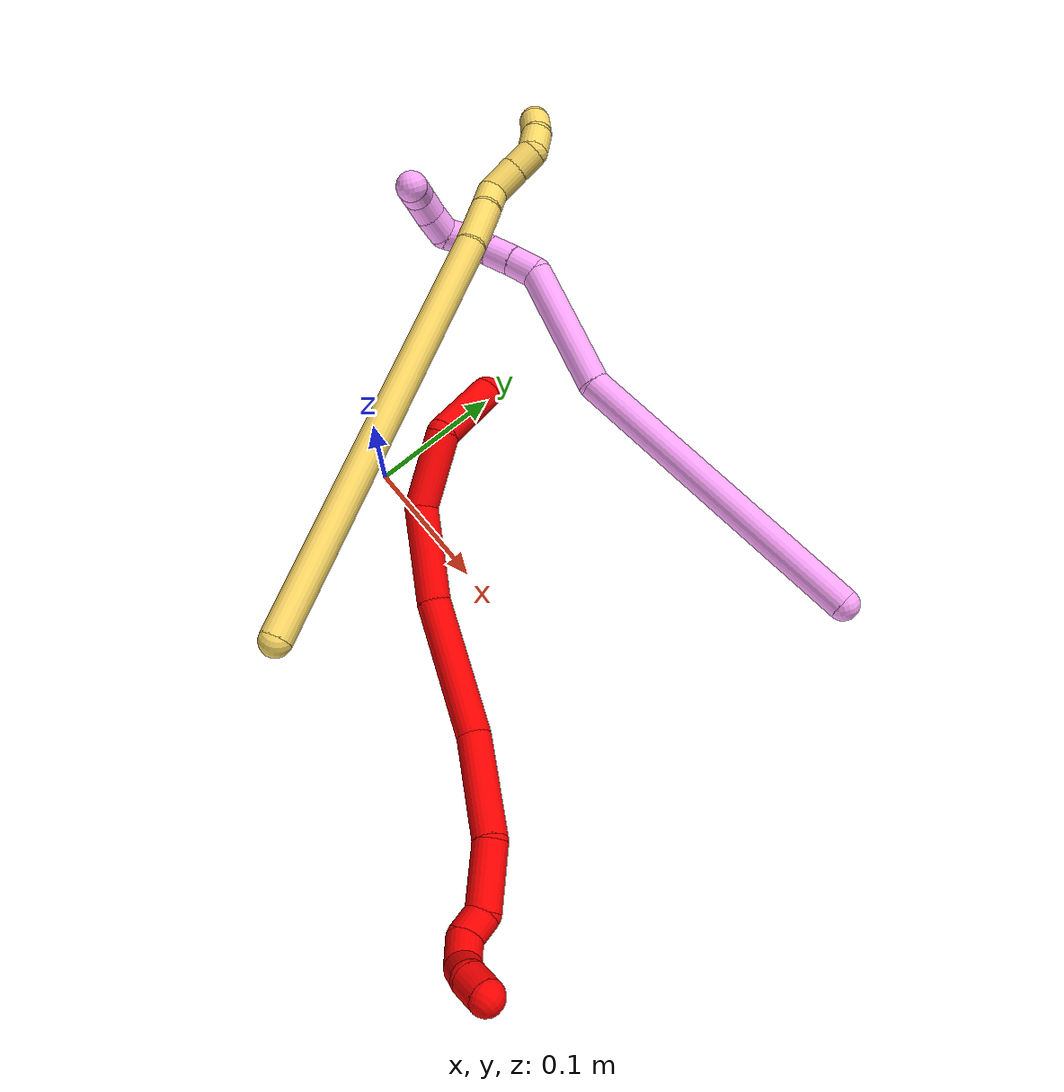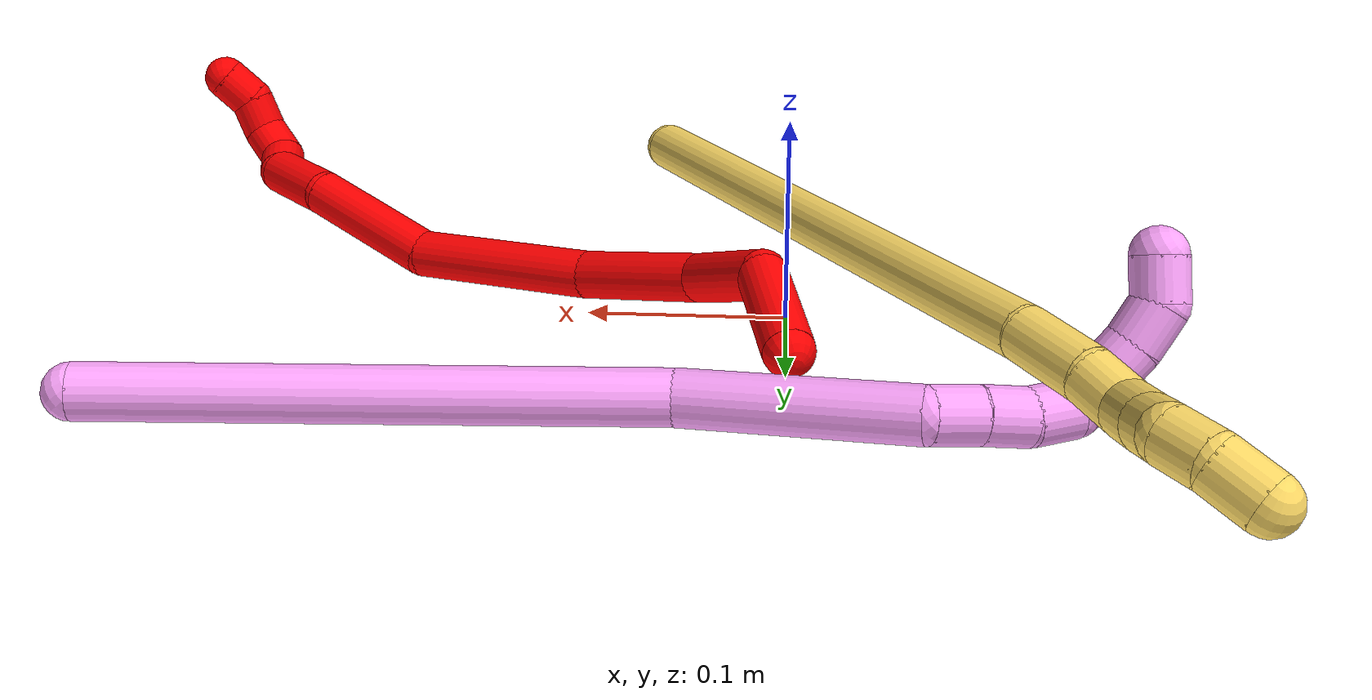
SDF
<sdf version="1.7">
 <world name="default">
  <model name="photoneo_s_sensor">
   <static>1</static>
   <pose>0 0 2 1.57079 1.57079 3.14159</pose>
   <link name="link">
    <inertial><mass>0.1</mass></inertial>
    <sensor name="sensor" type="depth">
     <update_rate>30</update_rate>
     <camera>
      <horizontal_fov>1.22</horizontal_fov>
      <image><width>1920</width><height>1200</height><format>B8G8R8</format></image>
      <clip><near>0.1</near><far>4</far></clip>
      <depth_camera><output>points</output></depth_camera>
     </camera>
     <plugin name="camera_plugin" filename="libgazebo_ros_depth_camera.so">
      <baseline>0.2</baseline>
      <alwaysOn>1</alwaysOn>
      <updateRate>0.0</updateRate>
      <cameraName>camera_ir</cameraName>
      <imageTopicName>/camera/color/image_raw</imageTopicName>
      <cameraInfoTopicName>/camera/color/camera_info</cameraInfoTopicName>
      <depthImageTopicName>/camera/depth/image_raw</depthImageTopicName>
      <depthImageCameraInfoTopicName>/camera/depth/camera_info</depthImageCameraInfoTopicName>
      <pointCloudTopicName>/camera/depth/points</pointCloudTopicName>
      <frameName>fr_optical</frameName>
      <pointCloudCutoff>0.1</pointCloudCutoff>
      <pointCloudCutoffMax>2.0</pointCloudCutoffMax>
      <distortionK1>0</distortionK1>
      <distortionK2>0</distortionK2>
      <distortionK3>0</distortionK3>
      <distortionT1>0</distortionT1>
      <distortionT2>0</distortionT2>
      <CxPrime>0</CxPrime>
      <Cx>0</Cx>
      <Cy>0</Cy>
      <focalLength>0</focalLength>
      <hackBaseline>0</hackBaseline>
     </plugin>
    </sensor>
   </link>
  </model>
  <model name="bin">
   <static>1</static>
   <link name="bottom">
    <collision name="collision-bottom">
     <pose>0 0 -0.01 0 -0 0</pose>
     <geometry><box><size>0.8 0.6 0.02</size></box></geometry>
     <surface>
      <friction><ode><mu>100</mu><mu2>100</mu2></ode></friction>
      <contact><collide_bitmask>65535</collide_bitmask></contact>
     </surface>
    </collision>
   </link>
   <link name="west_wall">
    <collision name="collision-west_wall">
     <pose>-0.41 0 0.1 0 -0 0</pose>
     <geometry><box><size>0.02 0.6 0.2</size></box></geometry>
     <surface>
      <friction><ode><mu>100</mu><mu2>100</mu2></ode></friction>
      <contact><collide_bitmask>65535</collide_bitmask></contact>
     </surface>
    </collision>
   </link>
   <link name="east_wall">
    <collision name="collision-east_wall">
     <pose>0.41 0 0.1 0 -0 0</pose>
     <geometry><box><size>0.02 0.6 0.2</size></box></geometry>
     <surface>
      <friction><ode><mu>100</mu><mu2>100</mu2></ode></friction>
      <contact><collide_bitmask>65535</collide_bitmask></contact>
     </surface>
    </collision>
   </link>
   <link name="south_wall">
    <collision name="collision-south_wall">
     <pose>0 -0.31 0.1 0 -0 0</pose>
     <geometry><box><size>0.8 0.02 0.2</size></box></geometry>
     <surface>
      <friction><ode><mu>100</mu><mu2>100</mu2></ode></friction>
      <contact><collide_bitmask>65535</collide_bitmask></contact>
     </surface>
    </collision>
   </link>
   <link name="north_wall">
    <collision name="collision-north_wall">
     <pose>0 0.31 0.1 0 -0 0</pose>
     <geometry><box><size>0.8 0.02 0.2</size></box></geometry>
     <surface>
      <friction><ode><mu>100</mu><mu2>100</mu2></ode></friction>
      <contact><collide_bitmask>65535</collide_bitmask></contact>
     </surface>
    </collision>
   </link>
  </model>
  <model name="2">
   <static>0</static>
   <link name="2">
    <collision name="collision-cylinder-e_1_1_4">
     <pose>-0.001656 0.001019 0.028916 -0.035209 -0.057168 0.001007</pose>
     <geometry><cylinder><radius>0.0125</radius><length>0.057963</length></cylinder></geometry>
     <surface>
      <friction><ode><mu>1.16</mu><mu2>1.16</mu2><slip1>0</slip1><slip2>0</slip2></ode></friction>
      <contact><ode><kp>1e+06</kp><kd>1</kd><max_vel>0</max_vel><min_depth>0.001</min_depth></ode></contact>
     </surface>
    </collision>
    <visual name="visual-cylinder-e_1_1_4">
     <pose>-0.001656 0.001019 0.028916 -0.035209 -0.057168 0.001007</pose>
     <geometry><cylinder><radius>0.0125</radius><length>0.057963</length></cylinder></geometry>
     <material><ambient>1 0 0 1</ambient></material>
    </visual>
    <collision name="collision-cylinder-e_2_4_5">
     <pose>-0.003326 -0.016285 0.080387 0.682206 -0.000497 -0.000176</pose>
     <geometry><cylinder><radius>0.0125</radius><length>0.058118</length></cylinder></geometry>
     <surface>
      <friction><ode><mu>1.16</mu><mu2>1.16</mu2><slip1>0</slip1><slip2>0</slip2></ode></friction>
      <contact><ode><kp>1e+06</kp><kd>1</kd><max_vel>0</max_vel><min_depth>0.001</min_depth></ode></contact>
     </surface>
    </collision>
    <visual name="visual-cylinder-e_2_4_5">
     <pose>-0.003326 -0.016285 0.080387 0.682206 -0.000497 -0.000176</pose>
     <geometry><cylinder><radius>0.0125</radius><length>0.058118</length></cylinder></geometry>
     <material><ambient>1 0 0 1</ambient></material>
    </visual>
    <collision name="collision-cylinder-e_3_5_6">
     <pose>0.011433 -0.057388 0.126211 0.774822 0.425922 0.17601</pose>
     <geometry><cylinder><radius>0.0125</radius><length>0.071518</length></cylinder></geometry>
     <surface>
      <friction><ode><mu>1.16</mu><mu2>1.16</mu2><slip1>0</slip1><slip2>0</slip2></ode></friction>
      <contact><ode><kp>1e+06</kp><kd>1</kd><max_vel>0</max_vel><min_depth>0.001</min_depth></ode></contact>
     </surface>
    </collision>
    <visual name="visual-cylinder-e_3_5_6">
     <pose>0.011433 -0.057388 0.126211 0.774822 0.425922 0.17601</pose>
     <geometry><cylinder><radius>0.0125</radius><length>0.071518</length></cylinder></geometry>
     <material><ambient>1 0 0 1</ambient></material>
    </visual>
    <collision name="collision-cylinder-e_4_6_7">
     <pose>0.056091 -0.108181 0.180338 0.737078 0.622075 0.24703</pose>
     <geometry><cylinder><radius>0.0125</radius><length>0.102567</length></cylinder></geometry>
     <surface>
      <friction><ode><mu>1.16</mu><mu2>1.16</mu2><slip1>0</slip1><slip2>0</slip2></ode></friction>
      <contact><ode><kp>1e+06</kp><kd>1</kd><max_vel>0</max_vel><min_depth>0.001</min_depth></ode></contact>
     </surface>
    </collision>
    <visual name="visual-cylinder-e_4_6_7">
     <pose>0.056091 -0.108181 0.180338 0.737078 0.622075 0.24703</pose>
     <geometry><cylinder><radius>0.0125</radius><length>0.102567</length></cylinder></geometry>
     <material><ambient>1 0 0 1</ambient></material>
    </visual>
    <collision name="collision-cylinder-e_5_7_8">
     <pose>0.109058 -0.145863 0.241978 0.304396 0.620983 0.098353</pose>
     <geometry><cylinder><radius>0.0125</radius><length>0.079343</length></cylinder></geometry>
     <surface>
      <friction><ode><mu>1.16</mu><mu2>1.16</mu2><slip1>0</slip1><slip2>0</slip2></ode></friction>
      <contact><ode><kp>1e+06</kp><kd>1</kd><max_vel>0</max_vel><min_depth>0.001</min_depth></ode></contact>
     </surface>
    </collision>
    <visual name="visual-cylinder-e_5_7_8">
     <pose>0.109058 -0.145863 0.241978 0.304396 0.620983 0.098353</pose>
     <geometry><cylinder><radius>0.0125</radius><length>0.079343</length></cylinder></geometry>
     <material><ambient>1 0 0 1</ambient></material>
    </visual>
    <collision name="collision-cylinder-e_6_8_9">
     <pose>0.139473 -0.164969 0.293225 0.431981 0.314619 0.069579</pose>
     <geometry><cylinder><radius>0.0125</radius><length>0.047396</length></cylinder></geometry>
     <surface>
      <friction><ode><mu>1.16</mu><mu2>1.16</mu2><slip1>0</slip1><slip2>0</slip2></ode></friction>
      <contact><ode><kp>1e+06</kp><kd>1</kd><max_vel>0</max_vel><min_depth>0.001</min_depth></ode></contact>
     </surface>
    </collision>
    <visual name="visual-cylinder-e_6_8_9">
     <pose>0.139473 -0.164969 0.293225 0.431981 0.314619 0.069579</pose>
     <geometry><cylinder><radius>0.0125</radius><length>0.047396</length></cylinder></geometry>
     <material><ambient>1 0 0 1</ambient></material>
    </visual>
    <collision name="collision-cylinder-e_7_9_10">
     <pose>0.145511 -0.175029 0.323662 0.062618 -0.128995 -0.004046</pose>
     <geometry><cylinder><radius>0.0125</radius><length>0.020151</length></cylinder></geometry>
     <surface>
      <friction><ode><mu>1.16</mu><mu2>1.16</mu2><slip1>0</slip1><slip2>0</slip2></ode></friction>
      <contact><ode><kp>1e+06</kp><kd>1</kd><max_vel>0</max_vel><min_depth>0.001</min_depth></ode></contact>
     </surface>
    </collision>
    <visual name="visual-cylinder-e_7_9_10">
     <pose>0.145511 -0.175029 0.323662 0.062618 -0.128995 -0.004046</pose>
     <geometry><cylinder><radius>0.0125</radius><length>0.020151</length></cylinder></geometry>
     <material><ambient>1 0 0 1</ambient></material>
    </visual>
    <collision name="collision-cylinder-e_8_10_11">
     <pose>0.14977 -0.174624 0.343304 -0.106087 0.518986 -0.028188</pose>
     <geometry><cylinder><radius>0.0125</radius><length>0.0224</length></cylinder></geometry>
     <surface>
      <friction><ode><mu>1.16</mu><mu2>1.16</mu2><slip1>0</slip1><slip2>0</slip2></ode></friction>
      <contact><ode><kp>1e+06</kp><kd>1</kd><max_vel>0</max_vel><min_depth>0.001</min_depth></ode></contact>
     </surface>
    </collision>
    <visual name="visual-cylinder-e_8_10_11">
     <pose>0.14977 -0.174624 0.343304 -0.106087 0.518986 -0.028188</pose>
     <geometry><cylinder><radius>0.0125</radius><length>0.0224</length></cylinder></geometry>
     <material><ambient>1 0 0 1</ambient></material>
    </visual>
    <collision name="collision-cylinder-e_9_11_12">
     <pose>0.162188 -0.167761 0.357911 -0.868477 0.731763 -0.351693</pose>
     <geometry><cylinder><radius>0.0125</radius><length>0.020543</length></cylinder></geometry>
     <surface>
      <friction><ode><mu>1.16</mu><mu2>1.16</mu2><slip1>0</slip1><slip2>0</slip2></ode></friction>
      <contact><ode><kp>1e+06</kp><kd>1</kd><max_vel>0</max_vel><min_depth>0.001</min_depth></ode></contact>
     </surface>
    </collision>
    <visual name="visual-cylinder-e_9_11_12">
     <pose>0.162188 -0.167761 0.357911 -0.868477 0.731763 -0.351693</pose>
     <geometry><cylinder><radius>0.0125</radius><length>0.020543</length></cylinder></geometry>
     <material><ambient>1 0 0 1</ambient></material>
    </visual>
    <collision name="collision-cylinder-e_10_12_2">
     <pose>0.17804 -0.159955 0.366766 -0.466342 1.11681 -0.294585</pose>
     <geometry><cylinder><radius>0.0125</radius><length>0.020003</length></cylinder></geometry>
     <surface>
      <friction><ode><mu>1.16</mu><mu2>1.16</mu2><slip1>0</slip1><slip2>0</slip2></ode></friction>
      <contact><ode><kp>1e+06</kp><kd>1</kd><max_vel>0</max_vel><min_depth>0.001</min_depth></ode></contact>
     </surface>
    </collision>
    <visual name="visual-cylinder-e_10_12_2">
     <pose>0.17804 -0.159955 0.366766 -0.466342 1.11681 -0.294585</pose>
     <geometry><cylinder><radius>0.0125</radius><length>0.020003</length></cylinder></geometry>
     <material><ambient>1 0 0 1</ambient></material>
    </visual>
    <collision name="collision-sphere-2">
     <pose>0.187028 -0.157983 0.370684 0 -0 0</pose>
     <geometry><sphere><radius>0.0125</radius></sphere></geometry>
     <surface>
      <friction><ode><mu>1.16</mu><mu2>1.16</mu2><slip1>0</slip1><slip2>0</slip2></ode></friction>
      <contact><ode><kp>1e+06</kp><kd>1</kd><max_vel>0</max_vel><min_depth>0.001</min_depth></ode></contact>
     </surface>
    </collision>
    <visual name="visual-sphere-2">
     <pose>0.187028 -0.157983 0.370684 0 -0 0</pose>
     <geometry><sphere><radius>0.0125</radius></sphere></geometry>
     <material><ambient>1 0 0 1</ambient></material>
    </visual>
    <collision name="collision-sphere-12">
     <pose>0.169052 -0.161927 0.362848 0 -0 0</pose>
     <geometry><sphere><radius>0.0125</radius></sphere></geometry>
     <surface>
      <friction><ode><mu>1.16</mu><mu2>1.16</mu2><slip1>0</slip1><slip2>0</slip2></ode></friction>
      <contact><ode><kp>1e+06</kp><kd>1</kd><max_vel>0</max_vel><min_depth>0.001</min_depth></ode></contact>
     </surface>
    </collision>
    <visual name="visual-sphere-12">
     <pose>0.169052 -0.161927 0.362848 0 -0 0</pose>
     <geometry><sphere><radius>0.0125</radius></sphere></geometry>
     <material><ambient>1 0 0 1</ambient></material>
    </visual>
    <collision name="collision-sphere-11">
     <pose>0.155325 -0.173594 0.352975 0 -0 0</pose>
     <geometry><sphere><radius>0.0125</radius></sphere></geometry>
     <surface>
      <friction><ode><mu>1.16</mu><mu2>1.16</mu2><slip1>0</slip1><slip2>0</slip2></ode></friction>
      <contact><ode><kp>1e+06</kp><kd>1</kd><max_vel>0</max_vel><min_depth>0.001</min_depth></ode></contact>
     </surface>
    </collision>
    <visual name="visual-sphere-11">
     <pose>0.155325 -0.173594 0.352975 0 -0 0</pose>
     <geometry><sphere><radius>0.0125</radius></sphere></geometry>
     <material><ambient>1 0 0 1</ambient></material>
    </visual>
    <collision name="collision-sphere-10">
     <pose>0.144215 -0.175654 0.333634 0 -0 0</pose>
     <geometry><sphere><radius>0.0125</radius></sphere></geometry>
     <surface>
      <friction><ode><mu>1.16</mu><mu2>1.16</mu2><slip1>0</slip1><slip2>0</slip2></ode></friction>
      <contact><ode><kp>1e+06</kp><kd>1</kd><max_vel>0</max_vel><min_depth>0.001</min_depth></ode></contact>
     </surface>
    </collision>
    <visual name="visual-sphere-10">
     <pose>0.144215 -0.175654 0.333634 0 -0 0</pose>
     <geometry><sphere><radius>0.0125</radius></sphere></geometry>
     <material><ambient>1 0 0 1</ambient></material>
    </visual>
    <collision name="collision-sphere-9">
     <pose>0.146807 -0.174403 0.31369 0 -0 0</pose>
     <geometry><sphere><radius>0.0125</radius></sphere></geometry>
     <surface>
      <friction><ode><mu>1.16</mu><mu2>1.16</mu2><slip1>0</slip1><slip2>0</slip2></ode></friction>
      <contact><ode><kp>1e+06</kp><kd>1</kd><max_vel>0</max_vel><min_depth>0.001</min_depth></ode></contact>
     </surface>
    </collision>
    <visual name="visual-sphere-9">
     <pose>0.146807 -0.174403 0.31369 0 -0 0</pose>
     <geometry><sphere><radius>0.0125</radius></sphere></geometry>
     <material><ambient>1 0 0 1</ambient></material>
    </visual>
    <collision name="collision-sphere-4">
     <pose>-0.003312 0.002037 0.057832 0 -0 0</pose>
     <geometry><sphere><radius>0.0125</radius></sphere></geometry>
     <surface>
      <friction><ode><mu>1.16</mu><mu2>1.16</mu2><slip1>0</slip1><slip2>0</slip2></ode></friction>
      <contact><ode><kp>1e+06</kp><kd>1</kd><max_vel>0</max_vel><min_depth>0.001</min_depth></ode></contact>
     </surface>
    </collision>
    <visual name="visual-sphere-4">
     <pose>-0.003312 0.002037 0.057832 0 -0 0</pose>
     <geometry><sphere><radius>0.0125</radius></sphere></geometry>
     <material><ambient>1 0 0 1</ambient></material>
    </visual>
    <collision name="collision-sphere-1">
     <geometry><sphere><radius>0.0125</radius></sphere></geometry>
     <surface>
      <friction><ode><mu>1.16</mu><mu2>1.16</mu2><slip1>0</slip1><slip2>0</slip2></ode></friction>
      <contact><ode><kp>1e+06</kp><kd>1</kd><max_vel>0</max_vel><min_depth>0.001</min_depth></ode></contact>
     </surface>
    </collision>
    <visual name="visual-sphere-1">
     <geometry><sphere><radius>0.0125</radius></sphere></geometry>
     <material><ambient>1 0 0 1</ambient></material>
    </visual>
    <collision name="collision-sphere-8">
     <pose>0.13214 -0.155534 0.27276 0 -0 0</pose>
     <geometry><sphere><radius>0.0125</radius></sphere></geometry>
     <surface>
      <friction><ode><mu>1.16</mu><mu2>1.16</mu2><slip1>0</slip1><slip2>0</slip2></ode></friction>
      <contact><ode><kp>1e+06</kp><kd>1</kd><max_vel>0</max_vel><min_depth>0.001</min_depth></ode></contact>
     </surface>
    </collision>
    <visual name="visual-sphere-8">
     <pose>0.13214 -0.155534 0.27276 0 -0 0</pose>
     <geometry><sphere><radius>0.0125</radius></sphere></geometry>
     <material><ambient>1 0 0 1</ambient></material>
    </visual>
    <collision name="collision-sphere-5">
     <pose>-0.003341 -0.034606 0.102942 0 -0 0</pose>
     <geometry><sphere><radius>0.0125</radius></sphere></geometry>
     <surface>
      <friction><ode><mu>1.16</mu><mu2>1.16</mu2><slip1>0</slip1><slip2>0</slip2></ode></friction>
      <contact><ode><kp>1e+06</kp><kd>1</kd><max_vel>0</max_vel><min_depth>0.001</min_depth></ode></contact>
     </surface>
    </collision>
    <visual name="visual-sphere-5">
     <pose>-0.003341 -0.034606 0.102942 0 -0 0</pose>
     <geometry><sphere><radius>0.0125</radius></sphere></geometry>
     <material><ambient>1 0 0 1</ambient></material>
    </visual>
    <collision name="collision-sphere-6">
     <pose>0.026208 -0.080169 0.149479 0 -0 0</pose>
     <geometry><sphere><radius>0.0125</radius></sphere></geometry>
     <surface>
      <friction><ode><mu>1.16</mu><mu2>1.16</mu2><slip1>0</slip1><slip2>0</slip2></ode></friction>
      <contact><ode><kp>1e+06</kp><kd>1</kd><max_vel>0</max_vel><min_depth>0.001</min_depth></ode></contact>
     </surface>
    </collision>
    <visual name="visual-sphere-6">
     <pose>0.026208 -0.080169 0.149479 0 -0 0</pose>
     <geometry><sphere><radius>0.0125</radius></sphere></geometry>
     <material><ambient>1 0 0 1</ambient></material>
    </visual>
    <collision name="collision-sphere-7">
     <pose>0.085975 -0.136193 0.211196 0 -0 0</pose>
     <geometry><sphere><radius>0.0125</radius></sphere></geometry>
     <surface>
      <friction><ode><mu>1.16</mu><mu2>1.16</mu2><slip1>0</slip1><slip2>0</slip2></ode></friction>
      <contact><ode><kp>1e+06</kp><kd>1</kd><max_vel>0</max_vel><min_depth>0.001</min_depth></ode></contact>
     </surface>
    </collision>
    <visual name="visual-sphere-7">
     <pose>0.085975 -0.136193 0.211196 0 -0 0</pose>
     <geometry><sphere><radius>0.0125</radius></sphere></geometry>
     <material><ambient>1 0 0 1</ambient></material>
    </visual>
    <inertial>
     <pose>0.06945 -0.099128 0.191738 0 -0 0</pose>
     <mass>0.5</mass>
     <inertia>
      <ixx>0.000234</ixx>
      <ixy>0</ixy>
      <ixz>0</ixz>
      <iyy>0.000209</iyy>
      <iyz>0</iyz>
      <izz>2.7e-05</izz>
     </inertia>
    </inertial>
   </link>
   <pose>-0.001333 0.101241 0.012499 1.15257 -0.412148 0.491102</pose>
  </model>
  <model name="4">
   <static>0</static>
   <link name="4">
    <collision name="collision-cylinder-e_1_1_4">
     <pose>-0.075047 0.05097 0.086446 -0.532748 -0.642109 0.180988</pose>
     <geometry><cylinder><radius>0.0125</radius><length>0.250622</length></cylinder></geometry>
     <surface>
      <friction><ode><mu>1.16</mu><mu2>1.16</mu2><slip1>0</slip1><slip2>0</slip2></ode></friction>
      <contact><ode><kp>1e+06</kp><kd>1</kd><max_vel>0</max_vel><min_depth>0.001</min_depth></ode></contact>
     </surface>
    </collision>
    <visual name="visual-cylinder-e_1_1_4">
     <pose>-0.075047 0.05097 0.086446 -0.532748 -0.642109 0.180988</pose>
     <geometry><cylinder><radius>0.0125</radius><length>0.250622</length></cylinder></geometry>
     <material><ambient>1 0.65098 0.996078 1</ambient></material>
    </visual>
    <collision name="collision-cylinder-e_2_4_5">
     <pose>-0.16509 0.129749 0.214877 -0.585015 -0.289409 0.087712</pose>
     <geometry><cylinder><radius>0.0125</radius><length>0.105091</length></cylinder></geometry>
     <surface>
      <friction><ode><mu>1.16</mu><mu2>1.16</mu2><slip1>0</slip1><slip2>0</slip2></ode></friction>
      <contact><ode><kp>1e+06</kp><kd>1</kd><max_vel>0</max_vel><min_depth>0.001</min_depth></ode></contact>
     </surface>
    </collision>
    <visual name="visual-cylinder-e_2_4_5">
     <pose>-0.16509 0.129749 0.214877 -0.585015 -0.289409 0.087712</pose>
     <geometry><cylinder><radius>0.0125</radius><length>0.105091</length></cylinder></geometry>
     <material><ambient>1 0.65098 0.996078 1</ambient></material>
    </visual>
    <collision name="collision-cylinder-e_3_5_6">
     <pose>-0.188596 0.161143 0.263134 -0.519198 -0.867084 0.244666</pose>
     <geometry><cylinder><radius>0.0125</radius><length>0.022325</length></cylinder></geometry>
     <surface>
      <friction><ode><mu>1.16</mu><mu2>1.16</mu2><slip1>0</slip1><slip2>0</slip2></ode></friction>
      <contact><ode><kp>1e+06</kp><kd>1</kd><max_vel>0</max_vel><min_depth>0.001</min_depth></ode></contact>
     </surface>
    </collision>
    <visual name="visual-cylinder-e_3_5_6">
     <pose>-0.188596 0.161143 0.263134 -0.519198 -0.867084 0.244666</pose>
     <geometry><cylinder><radius>0.0125</radius><length>0.022325</length></cylinder></geometry>
     <material><ambient>1 0.65098 0.996078 1</ambient></material>
    </visual>
    <collision name="collision-cylinder-e_4_6_7">
     <pose>-0.205637 0.168462 0.274929 -0.594568 -0.907187 0.296509</pose>
     <geometry><cylinder><radius>0.0125</radius><length>0.021654</length></cylinder></geometry>
     <surface>
      <friction><ode><mu>1.16</mu><mu2>1.16</mu2><slip1>0</slip1><slip2>0</slip2></ode></friction>
      <contact><ode><kp>1e+06</kp><kd>1</kd><max_vel>0</max_vel><min_depth>0.001</min_depth></ode></contact>
     </surface>
    </collision>
    <visual name="visual-cylinder-e_4_6_7">
     <pose>-0.205637 0.168462 0.274929 -0.594568 -0.907187 0.296509</pose>
     <geometry><cylinder><radius>0.0125</radius><length>0.021654</length></cylinder></geometry>
     <material><ambient>1 0.65098 0.996078 1</ambient></material>
    </visual>
    <collision name="collision-cylinder-e_5_7_8">
     <pose>-0.222115 0.173707 0.286473 -0.245762 -0.908005 0.120394</pose>
     <geometry><cylinder><radius>0.0125</radius><length>0.020169</length></cylinder></geometry>
     <surface>
      <friction><ode><mu>1.16</mu><mu2>1.16</mu2><slip1>0</slip1><slip2>0</slip2></ode></friction>
      <contact><ode><kp>1e+06</kp><kd>1</kd><max_vel>0</max_vel><min_depth>0.001</min_depth></ode></contact>
     </surface>
    </collision>
    <visual name="visual-cylinder-e_5_7_8">
     <pose>-0.222115 0.173707 0.286473 -0.245762 -0.908005 0.120394</pose>
     <geometry><cylinder><radius>0.0125</radius><length>0.020169</length></cylinder></geometry>
     <material><ambient>1 0.65098 0.996078 1</ambient></material>
    </visual>
    <collision name="collision-cylinder-e_6_8_9">
     <pose>-0.237934 0.171852 0.297666 0.576614 -0.905596 -0.286591</pose>
     <geometry><cylinder><radius>0.0125</radius><length>0.020003</length></cylinder></geometry>
     <surface>
      <friction><ode><mu>1.16</mu><mu2>1.16</mu2><slip1>0</slip1><slip2>0</slip2></ode></friction>
      <contact><ode><kp>1e+06</kp><kd>1</kd><max_vel>0</max_vel><min_depth>0.001</min_depth></ode></contact>
     </surface>
    </collision>
    <visual name="visual-cylinder-e_6_8_9">
     <pose>-0.237934 0.171852 0.297666 0.576614 -0.905596 -0.286591</pose>
     <geometry><cylinder><radius>0.0125</radius><length>0.020003</length></cylinder></geometry>
     <material><ambient>1 0.65098 0.996078 1</ambient></material>
    </visual>
    <collision name="collision-cylinder-e_7_9_10">
     <pose>-0.248827 0.165093 0.311803 0.361927 -0.305652 -0.056348</pose>
     <geometry><cylinder><radius>0.0125</radius><length>0.020097</length></cylinder></geometry>
     <surface>
      <friction><ode><mu>1.16</mu><mu2>1.16</mu2><slip1>0</slip1><slip2>0</slip2></ode></friction>
      <contact><ode><kp>1e+06</kp><kd>1</kd><max_vel>0</max_vel><min_depth>0.001</min_depth></ode></contact>
     </surface>
    </collision>
    <visual name="visual-cylinder-e_7_9_10">
     <pose>-0.248827 0.165093 0.311803 0.361927 -0.305652 -0.056348</pose>
     <geometry><cylinder><radius>0.0125</radius><length>0.020097</length></cylinder></geometry>
     <material><ambient>1 0.65098 0.996078 1</ambient></material>
    </visual>
    <collision name="collision-cylinder-e_8_10_11">
     <pose>-0.253694 0.157092 0.329464 0.487161 -0.185143 -0.046135</pose>
     <geometry><cylinder><radius>0.0125</radius><length>0.020029</length></cylinder></geometry>
     <surface>
      <friction><ode><mu>1.16</mu><mu2>1.16</mu2><slip1>0</slip1><slip2>0</slip2></ode></friction>
      <contact><ode><kp>1e+06</kp><kd>1</kd><max_vel>0</max_vel><min_depth>0.001</min_depth></ode></contact>
     </surface>
    </collision>
    <visual name="visual-cylinder-e_8_10_11">
     <pose>-0.253694 0.157092 0.329464 0.487161 -0.185143 -0.046135</pose>
     <geometry><cylinder><radius>0.0125</radius><length>0.020029</length></cylinder></geometry>
     <material><ambient>1 0.65098 0.996078 1</ambient></material>
    </visual>
    <collision name="collision-cylinder-e_9_11_2">
     <pose>-0.255274 0.143848 0.343206 1.04212 0.026365 0.015133</pose>
     <geometry><cylinder><radius>0.0125</radius><length>0.020009</length></cylinder></geometry>
     <surface>
      <friction><ode><mu>1.16</mu><mu2>1.16</mu2><slip1>0</slip1><slip2>0</slip2></ode></friction>
      <contact><ode><kp>1e+06</kp><kd>1</kd><max_vel>0</max_vel><min_depth>0.001</min_depth></ode></contact>
     </surface>
    </collision>
    <visual name="visual-cylinder-e_9_11_2">
     <pose>-0.255274 0.143848 0.343206 1.04212 0.026365 0.015133</pose>
     <geometry><cylinder><radius>0.0125</radius><length>0.020009</length></cylinder></geometry>
     <material><ambient>1 0.65098 0.996078 1</ambient></material>
    </visual>
    <collision name="collision-sphere-2">
     <pose>-0.25501 0.135213 0.348251 0 -0 0</pose>
     <geometry><sphere><radius>0.0125</radius></sphere></geometry>
     <surface>
      <friction><ode><mu>1.16</mu><mu2>1.16</mu2><slip1>0</slip1><slip2>0</slip2></ode></friction>
      <contact><ode><kp>1e+06</kp><kd>1</kd><max_vel>0</max_vel><min_depth>0.001</min_depth></ode></contact>
     </surface>
    </collision>
    <visual name="visual-sphere-2">
     <pose>-0.25501 0.135213 0.348251 0 -0 0</pose>
     <geometry><sphere><radius>0.0125</radius></sphere></geometry>
     <material><ambient>1 0.65098 0.996078 1</ambient></material>
    </visual>
    <collision name="collision-sphere-11">
     <pose>-0.255537 0.152484 0.338162 0 -0 0</pose>
     <geometry><sphere><radius>0.0125</radius></sphere></geometry>
     <surface>
      <friction><ode><mu>1.16</mu><mu2>1.16</mu2><slip1>0</slip1><slip2>0</slip2></ode></friction>
      <contact><ode><kp>1e+06</kp><kd>1</kd><max_vel>0</max_vel><min_depth>0.001</min_depth></ode></contact>
     </surface>
    </collision>
    <visual name="visual-sphere-11">
     <pose>-0.255537 0.152484 0.338162 0 -0 0</pose>
     <geometry><sphere><radius>0.0125</radius></sphere></geometry>
     <material><ambient>1 0.65098 0.996078 1</ambient></material>
    </visual>
    <collision name="collision-sphere-10">
     <pose>-0.25185 0.1617 0.320765 0 -0 0</pose>
     <geometry><sphere><radius>0.0125</radius></sphere></geometry>
     <surface>
      <friction><ode><mu>1.16</mu><mu2>1.16</mu2><slip1>0</slip1><slip2>0</slip2></ode></friction>
      <contact><ode><kp>1e+06</kp><kd>1</kd><max_vel>0</max_vel><min_depth>0.001</min_depth></ode></contact>
     </surface>
    </collision>
    <visual name="visual-sphere-10">
     <pose>-0.25185 0.1617 0.320765 0 -0 0</pose>
     <geometry><sphere><radius>0.0125</radius></sphere></geometry>
     <material><ambient>1 0.65098 0.996078 1</ambient></material>
    </visual>
    <collision name="collision-sphere-9">
     <pose>-0.245803 0.168486 0.302841 0 -0 0</pose>
     <geometry><sphere><radius>0.0125</radius></sphere></geometry>
     <surface>
      <friction><ode><mu>1.16</mu><mu2>1.16</mu2><slip1>0</slip1><slip2>0</slip2></ode></friction>
      <contact><ode><kp>1e+06</kp><kd>1</kd><max_vel>0</max_vel><min_depth>0.001</min_depth></ode></contact>
     </surface>
    </collision>
    <visual name="visual-sphere-9">
     <pose>-0.245803 0.168486 0.302841 0 -0 0</pose>
     <geometry><sphere><radius>0.0125</radius></sphere></geometry>
     <material><ambient>1 0.65098 0.996078 1</ambient></material>
    </visual>
    <collision name="collision-sphere-4">
     <pose>-0.150094 0.101939 0.172892 0 -0 0</pose>
     <geometry><sphere><radius>0.0125</radius></sphere></geometry>
     <surface>
      <friction><ode><mu>1.16</mu><mu2>1.16</mu2><slip1>0</slip1><slip2>0</slip2></ode></friction>
      <contact><ode><kp>1e+06</kp><kd>1</kd><max_vel>0</max_vel><min_depth>0.001</min_depth></ode></contact>
     </surface>
    </collision>
    <visual name="visual-sphere-4">
     <pose>-0.150094 0.101939 0.172892 0 -0 0</pose>
     <geometry><sphere><radius>0.0125</radius></sphere></geometry>
     <material><ambient>1 0.65098 0.996078 1</ambient></material>
    </visual>
    <collision name="collision-sphere-1">
     <geometry><sphere><radius>0.0125</radius></sphere></geometry>
     <surface>
      <friction><ode><mu>1.16</mu><mu2>1.16</mu2><slip1>0</slip1><slip2>0</slip2></ode></friction>
      <contact><ode><kp>1e+06</kp><kd>1</kd><max_vel>0</max_vel><min_depth>0.001</min_depth></ode></contact>
     </surface>
    </collision>
    <visual name="visual-sphere-1">
     <geometry><sphere><radius>0.0125</radius></sphere></geometry>
     <material><ambient>1 0.65098 0.996078 1</ambient></material>
    </visual>
    <collision name="collision-sphere-8">
     <pose>-0.230064 0.175217 0.292491 0 -0 0</pose>
     <geometry><sphere><radius>0.0125</radius></sphere></geometry>
     <surface>
      <friction><ode><mu>1.16</mu><mu2>1.16</mu2><slip1>0</slip1><slip2>0</slip2></ode></friction>
      <contact><ode><kp>1e+06</kp><kd>1</kd><max_vel>0</max_vel><min_depth>0.001</min_depth></ode></contact>
     </surface>
    </collision>
    <visual name="visual-sphere-8">
     <pose>-0.230064 0.175217 0.292491 0 -0 0</pose>
     <geometry><sphere><radius>0.0125</radius></sphere></geometry>
     <material><ambient>1 0.65098 0.996078 1</ambient></material>
    </visual>
    <collision name="collision-sphere-5">
     <pose>-0.180086 0.157559 0.256863 0 -0 0</pose>
     <geometry><sphere><radius>0.0125</radius></sphere></geometry>
     <surface>
      <friction><ode><mu>1.16</mu><mu2>1.16</mu2><slip1>0</slip1><slip2>0</slip2></ode></friction>
      <contact><ode><kp>1e+06</kp><kd>1</kd><max_vel>0</max_vel><min_depth>0.001</min_depth></ode></contact>
     </surface>
    </collision>
    <visual name="visual-sphere-5">
     <pose>-0.180086 0.157559 0.256863 0 -0 0</pose>
     <geometry><sphere><radius>0.0125</radius></sphere></geometry>
     <material><ambient>1 0.65098 0.996078 1</ambient></material>
    </visual>
    <collision name="collision-sphere-6">
     <pose>-0.197107 0.164726 0.269405 0 -0 0</pose>
     <geometry><sphere><radius>0.0125</radius></sphere></geometry>
     <surface>
      <friction><ode><mu>1.16</mu><mu2>1.16</mu2><slip1>0</slip1><slip2>0</slip2></ode></friction>
      <contact><ode><kp>1e+06</kp><kd>1</kd><max_vel>0</max_vel><min_depth>0.001</min_depth></ode></contact>
     </surface>
    </collision>
    <visual name="visual-sphere-6">
     <pose>-0.197107 0.164726 0.269405 0 -0 0</pose>
     <geometry><sphere><radius>0.0125</radius></sphere></geometry>
     <material><ambient>1 0.65098 0.996078 1</ambient></material>
    </visual>
    <collision name="collision-sphere-7">
     <pose>-0.214166 0.172198 0.280454 0 -0 0</pose>
     <geometry><sphere><radius>0.0125</radius></sphere></geometry>
     <surface>
      <friction><ode><mu>1.16</mu><mu2>1.16</mu2><slip1>0</slip1><slip2>0</slip2></ode></friction>
      <contact><ode><kp>1e+06</kp><kd>1</kd><max_vel>0</max_vel><min_depth>0.001</min_depth></ode></contact>
     </surface>
    </collision>
    <visual name="visual-sphere-7">
     <pose>-0.214166 0.172198 0.280454 0 -0 0</pose>
     <geometry><sphere><radius>0.0125</radius></sphere></geometry>
     <material><ambient>1 0.65098 0.996078 1</ambient></material>
    </visual>
    <inertial>
     <pose>-0.138501 0.099877 0.175079 0 -0 0</pose>
     <mass>0.5</mass>
     <inertia>
      <ixx>0.001325</ixx>
      <ixy>0</ixy>
      <ixz>0</ixz>
      <iyy>0.001497</iyy>
      <iyz>0</iyz>
      <izz>0.000264</izz>
     </inertia>
    </inertial>
   </link>
   <pose>0.295245 0.195587 0.014362 -0.871338 -0.23698 1.00947</pose>
  </model>
  <model name="5">
   <static>0</static>
   <link name="5">
    <collision name="collision-cylinder-e_1_1_4">
     <pose>-0.058558 0.134364 -0.093683 -2.17966 -0.34334 0.641535</pose>
     <geometry><cylinder><radius>0.0125</radius><length>0.347905</length></cylinder></geometry>
     <surface>
      <friction><ode><mu>1.16</mu><mu2>1.16</mu2><slip1>0</slip1><slip2>0</slip2></ode></friction>
      <contact><ode><kp>1e+06</kp><kd>1</kd><max_vel>0</max_vel><min_depth>0.001</min_depth></ode></contact>
     </surface>
    </collision>
    <visual name="visual-cylinder-e_1_1_4">
     <pose>-0.058558 0.134364 -0.093683 -2.17966 -0.34334 0.641535</pose>
     <geometry><cylinder><radius>0.0125</radius><length>0.347905</length></cylinder></geometry>
     <material><ambient>1 0.858824 0.4 1</ambient></material>
    </visual>
    <collision name="collision-cylinder-e_2_4_5">
     <pose>-0.122732 0.285606 -0.195763 -2.03245 -0.28952 0.462289</pose>
     <geometry><cylinder><radius>0.0125</radius><length>0.039338</length></cylinder></geometry>
     <surface>
      <friction><ode><mu>1.16</mu><mu2>1.16</mu2><slip1>0</slip1><slip2>0</slip2></ode></friction>
      <contact><ode><kp>1e+06</kp><kd>1</kd><max_vel>0</max_vel><min_depth>0.001</min_depth></ode></contact>
     </surface>
    </collision>
    <visual name="visual-cylinder-e_2_4_5">
     <pose>-0.122732 0.285606 -0.195763 -2.03245 -0.28952 0.462289</pose>
     <geometry><cylinder><radius>0.0125</radius><length>0.039338</length></cylinder></geometry>
     <material><ambient>1 0.858824 0.4 1</ambient></material>
    </visual>
    <collision name="collision-cylinder-e_3_5_6">
     <pose>-0.13117 0.312806 -0.207031 -1.84212 -0.257579 0.337656</pose>
     <geometry><cylinder><radius>0.0125</radius><length>0.022162</length></cylinder></geometry>
     <surface>
      <friction><ode><mu>1.16</mu><mu2>1.16</mu2><slip1>0</slip1><slip2>0</slip2></ode></friction>
      <contact><ode><kp>1e+06</kp><kd>1</kd><max_vel>0</max_vel><min_depth>0.001</min_depth></ode></contact>
     </surface>
    </collision>
    <visual name="visual-cylinder-e_3_5_6">
     <pose>-0.13117 0.312806 -0.207031 -1.84212 -0.257579 0.337656</pose>
     <geometry><cylinder><radius>0.0125</radius><length>0.022162</length></cylinder></geometry>
     <material><ambient>1 0.858824 0.4 1</ambient></material>
    </visual>
    <collision name="collision-cylinder-e_4_6_7">
     <pose>-0.142051 0.329862 -0.21824 -2.46226 -0.644753 1.51456</pose>
     <geometry><cylinder><radius>0.0125</radius><length>0.026815</length></cylinder></geometry>
     <surface>
      <friction><ode><mu>1.16</mu><mu2>1.16</mu2><slip1>0</slip1><slip2>0</slip2></ode></friction>
      <contact><ode><kp>1e+06</kp><kd>1</kd><max_vel>0</max_vel><min_depth>0.001</min_depth></ode></contact>
     </surface>
    </collision>
    <visual name="visual-cylinder-e_4_6_7">
     <pose>-0.142051 0.329862 -0.21824 -2.46226 -0.644753 1.51456</pose>
     <geometry><cylinder><radius>0.0125</radius><length>0.026815</length></cylinder></geometry>
     <material><ambient>1 0.858824 0.4 1</ambient></material>
    </visual>
    <collision name="collision-cylinder-e_5_7_8">
     <pose>-0.156431 0.341269 -0.233321 -2.53554 -0.656498 1.65622</pose>
     <geometry><cylinder><radius>0.0125</radius><length>0.020718</length></cylinder></geometry>
     <surface>
      <friction><ode><mu>1.16</mu><mu2>1.16</mu2><slip1>0</slip1><slip2>0</slip2></ode></friction>
      <contact><ode><kp>1e+06</kp><kd>1</kd><max_vel>0</max_vel><min_depth>0.001</min_depth></ode></contact>
     </surface>
    </collision>
    <visual name="visual-cylinder-e_5_7_8">
     <pose>-0.156431 0.341269 -0.233321 -2.53554 -0.656498 1.65622</pose>
     <geometry><cylinder><radius>0.0125</radius><length>0.020718</length></cylinder></geometry>
     <material><ambient>1 0.858824 0.4 1</ambient></material>
    </visual>
    <collision name="collision-cylinder-e_6_8_9">
     <pose>-0.16459 0.355229 -0.244223 -1.99178 -0.178516 0.27452</pose>
     <geometry><cylinder><radius>0.0125</radius><length>0.020676</length></cylinder></geometry>
     <surface>
      <friction><ode><mu>1.16</mu><mu2>1.16</mu2><slip1>0</slip1><slip2>0</slip2></ode></friction>
      <contact><ode><kp>1e+06</kp><kd>1</kd><max_vel>0</max_vel><min_depth>0.001</min_depth></ode></contact>
     </surface>
    </collision>
    <visual name="visual-cylinder-e_6_8_9">
     <pose>-0.16459 0.355229 -0.244223 -1.99178 -0.178516 0.27452</pose>
     <geometry><cylinder><radius>0.0125</radius><length>0.020676</length></cylinder></geometry>
     <material><ambient>1 0.858824 0.4 1</ambient></material>
    </visual>
    <collision name="collision-cylinder-e_7_9_2">
     <pose>-0.166514 0.375625 -0.249733 -1.69195 -0.007921 0.008944</pose>
     <geometry><cylinder><radius>0.0125</radius><length>0.022386</length></cylinder></geometry>
     <surface>
      <friction><ode><mu>1.16</mu><mu2>1.16</mu2><slip1>0</slip1><slip2>0</slip2></ode></friction>
      <contact><ode><kp>1e+06</kp><kd>1</kd><max_vel>0</max_vel><min_depth>0.001</min_depth></ode></contact>
     </surface>
    </collision>
    <visual name="visual-cylinder-e_7_9_2">
     <pose>-0.166514 0.375625 -0.249733 -1.69195 -0.007921 0.008944</pose>
     <geometry><cylinder><radius>0.0125</radius><length>0.022386</length></cylinder></geometry>
     <material><ambient>1 0.858824 0.4 1</ambient></material>
    </visual>
    <collision name="collision-sphere-2">
     <pose>-0.166603 0.386736 -0.251086 0 -0 0</pose>
     <geometry><sphere><radius>0.0125</radius></sphere></geometry>
     <surface>
      <friction><ode><mu>1.16</mu><mu2>1.16</mu2><slip1>0</slip1><slip2>0</slip2></ode></friction>
      <contact><ode><kp>1e+06</kp><kd>1</kd><max_vel>0</max_vel><min_depth>0.001</min_depth></ode></contact>
     </surface>
    </collision>
    <visual name="visual-sphere-2">
     <pose>-0.166603 0.386736 -0.251086 0 -0 0</pose>
     <geometry><sphere><radius>0.0125</radius></sphere></geometry>
     <material><ambient>1 0.858824 0.4 1</ambient></material>
    </visual>
    <collision name="collision-sphere-9">
     <pose>-0.166425 0.364514 -0.248381 0 -0 0</pose>
     <geometry><sphere><radius>0.0125</radius></sphere></geometry>
     <surface>
      <friction><ode><mu>1.16</mu><mu2>1.16</mu2><slip1>0</slip1><slip2>0</slip2></ode></friction>
      <contact><ode><kp>1e+06</kp><kd>1</kd><max_vel>0</max_vel><min_depth>0.001</min_depth></ode></contact>
     </surface>
    </collision>
    <visual name="visual-sphere-9">
     <pose>-0.166425 0.364514 -0.248381 0 -0 0</pose>
     <geometry><sphere><radius>0.0125</radius></sphere></geometry>
     <material><ambient>1 0.858824 0.4 1</ambient></material>
    </visual>
    <collision name="collision-sphere-4">
     <pose>-0.117116 0.268729 -0.187366 0 -0 0</pose>
     <geometry><sphere><radius>0.0125</radius></sphere></geometry>
     <surface>
      <friction><ode><mu>1.16</mu><mu2>1.16</mu2><slip1>0</slip1><slip2>0</slip2></ode></friction>
      <contact><ode><kp>1e+06</kp><kd>1</kd><max_vel>0</max_vel><min_depth>0.001</min_depth></ode></contact>
     </surface>
    </collision>
    <visual name="visual-sphere-4">
     <pose>-0.117116 0.268729 -0.187366 0 -0 0</pose>
     <geometry><sphere><radius>0.0125</radius></sphere></geometry>
     <material><ambient>1 0.858824 0.4 1</ambient></material>
    </visual>
    <collision name="collision-sphere-1">
     <geometry><sphere><radius>0.0125</radius></sphere></geometry>
     <surface>
      <friction><ode><mu>1.16</mu><mu2>1.16</mu2><slip1>0</slip1><slip2>0</slip2></ode></friction>
      <contact><ode><kp>1e+06</kp><kd>1</kd><max_vel>0</max_vel><min_depth>0.001</min_depth></ode></contact>
     </surface>
    </collision>
    <visual name="visual-sphere-1">
     <geometry><sphere><radius>0.0125</radius></sphere></geometry>
     <material><ambient>1 0.858824 0.4 1</ambient></material>
    </visual>
    <collision name="collision-sphere-8">
     <pose>-0.162754 0.345943 -0.240065 0 -0 0</pose>
     <geometry><sphere><radius>0.0125</radius></sphere></geometry>
     <surface>
      <friction><ode><mu>1.16</mu><mu2>1.16</mu2><slip1>0</slip1><slip2>0</slip2></ode></friction>
      <contact><ode><kp>1e+06</kp><kd>1</kd><max_vel>0</max_vel><min_depth>0.001</min_depth></ode></contact>
     </surface>
    </collision>
    <visual name="visual-sphere-8">
     <pose>-0.162754 0.345943 -0.240065 0 -0 0</pose>
     <geometry><sphere><radius>0.0125</radius></sphere></geometry>
     <material><ambient>1 0.858824 0.4 1</ambient></material>
    </visual>
    <collision name="collision-sphere-5">
     <pose>-0.128347 0.302483 -0.204159 0 -0 0</pose>
     <geometry><sphere><radius>0.0125</radius></sphere></geometry>
     <surface>
      <friction><ode><mu>1.16</mu><mu2>1.16</mu2><slip1>0</slip1><slip2>0</slip2></ode></friction>
      <contact><ode><kp>1e+06</kp><kd>1</kd><max_vel>0</max_vel><min_depth>0.001</min_depth></ode></contact>
     </surface>
    </collision>
    <visual name="visual-sphere-5">
     <pose>-0.128347 0.302483 -0.204159 0 -0 0</pose>
     <geometry><sphere><radius>0.0125</radius></sphere></geometry>
     <material><ambient>1 0.858824 0.4 1</ambient></material>
    </visual>
    <collision name="collision-sphere-6">
     <pose>-0.133993 0.32313 -0.209903 0 -0 0</pose>
     <geometry><sphere><radius>0.0125</radius></sphere></geometry>
     <surface>
      <friction><ode><mu>1.16</mu><mu2>1.16</mu2><slip1>0</slip1><slip2>0</slip2></ode></friction>
      <contact><ode><kp>1e+06</kp><kd>1</kd><max_vel>0</max_vel><min_depth>0.001</min_depth></ode></contact>
     </surface>
    </collision>
    <visual name="visual-sphere-6">
     <pose>-0.133993 0.32313 -0.209903 0 -0 0</pose>
     <geometry><sphere><radius>0.0125</radius></sphere></geometry>
     <material><ambient>1 0.858824 0.4 1</ambient></material>
    </visual>
    <collision name="collision-sphere-7">
     <pose>-0.150108 0.336595 -0.226577 0 -0 0</pose>
     <geometry><sphere><radius>0.0125</radius></sphere></geometry>
     <surface>
      <friction><ode><mu>1.16</mu><mu2>1.16</mu2><slip1>0</slip1><slip2>0</slip2></ode></friction>
      <contact><ode><kp>1e+06</kp><kd>1</kd><max_vel>0</max_vel><min_depth>0.001</min_depth></ode></contact>
     </surface>
    </collision>
    <visual name="visual-sphere-7">
     <pose>-0.150108 0.336595 -0.226577 0 -0 0</pose>
     <geometry><sphere><radius>0.0125</radius></sphere></geometry>
     <material><ambient>1 0.858824 0.4 1</ambient></material>
    </visual>
    <inertial>
     <pose>-0.084577 0.193166 -0.132416 0 -0 0</pose>
     <mass>0.5</mass>
     <inertia>
      <ixx>0.004647</ixx>
      <ixy>0</ixy>
      <ixz>0</ixz>
      <iyy>0.000989</iyy>
      <iyz>0</iyz>
      <izz>-0.001562</izz>
     </inertia>
    </inertial>
   </link>
   <pose>0.068105 -0.141833 0.06139 -2.55067 -0.224871 -2.30754</pose>
  </model>
 </world>
</sdf>
